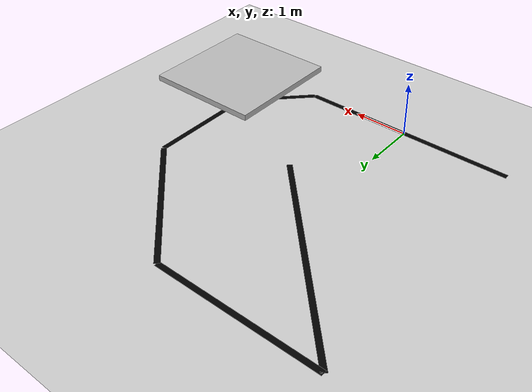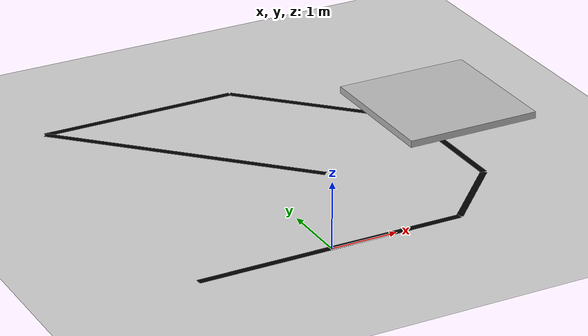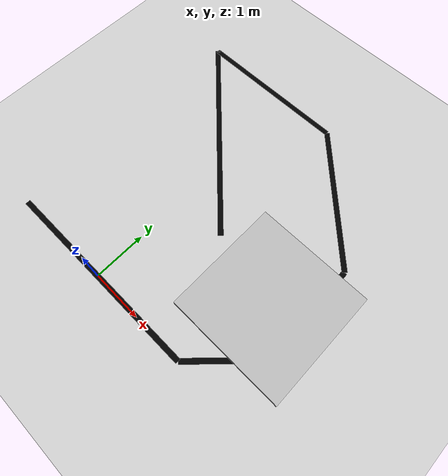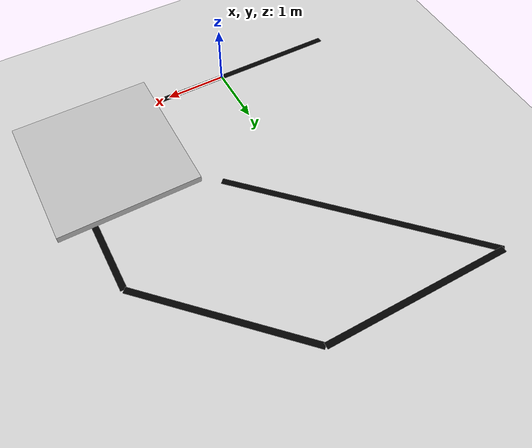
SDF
<?xml version="1.0" ?>
<sdf version="1.8">
  <world name="line_follower_world_v2">

    <!-- 1. 添加 Gazebo Sim 必需的系统插件 -->
    <plugin
      filename="gz-sim-physics-system"
      name="gz::sim::systems::Physics">
    </plugin>
    <plugin
      filename="gz-sim-sensors-system"
      name="gz::sim::systems::Sensors">
      <render_engine>ogre2</render_engine>
    </plugin>
    <plugin
      filename="gz-sim-user-commands-system"
      name="gz::sim::systems::UserCommands">
    </plugin>
    <plugin
      filename="gz-sim-scene-broadcaster-system"
      name="gz::sim::systems::SceneBroadcaster">
    </plugin>

    <!-- 太阳光照 -->
    <include>
      <uri>https://fuel.gazebosim.org/1.0/openrobotics/models/sun</uri>
    </include>

    <!-- 地面模型 -->
    <model name="ground_plane">
        <static>true</static>
        <link name="link">
            <collision name="collision">
                <geometry><plane><normal>0 0 1</normal><size>100 100</size></plane></geometry>
            </collision>
            <visual name="visual">
              <semantic><label>2</label></semantic>
              <geometry><plane><normal>0 0 1</normal><size>100 100</size></plane></geometry>
              <material>
                <!-- 为了可移植性，直接定义颜色，而不是依赖本地文件 -->
                <ambient>0.8 0.8 0.8 1</ambient>
                <diffuse>0.8 0.8 0.8 1</diffuse>
              </material>
              <cast_shadows>false</cast_shadows>
            </visual>
        </link>
    </model>

    <model name="line_track">
      <static>true</static>
      <!-- 每段线都是一个link，方便统一打标签 -->
      <!-- 原始路径: (-2,0)->(2,0)->(3,1)->(3,3)->(1,5)->(-2,5) -->

      <!-- 段 1: from (-2,0) to (2,0) -->
      <link name="segment_1">
        <pose>0 0 0.01 0 0 0</pose>
        <visual name="visual">
          <semantic><label>1</label></semantic>
          <geometry><box><size>4 0.1 0.001</size></box></geometry>
          <material><ambient>0 0 0 1</ambient><diffuse>0 0 0 1</diffuse></material>
        </visual>
      </link>

      <!-- 段 2: from (2,0) to (3,1) -->
      <link name="segment_2">
        <pose>2.5 0.5 0.01 0 0 0.785398</pose> <!-- 旋转45度 -->
        <visual name="visual">
          <semantic><label>1</label></semantic>
          <geometry><box><size>1.414 0.1 0.001</size></box></geometry>
          <material><ambient>0 0 0 1</ambient><diffuse>0 0 0 1</diffuse></material>
        </visual>
      </link>

      <!-- 段 3: from (3,1) to (3,3) -->
      <link name="segment_3">
        <pose>3 2 0.01 0 0 1.570796</pose> <!-- 旋转90度 -->
        <visual name="visual">
          <semantic><label>1</label></semantic>
          <geometry><box><size>2 0.1 0.001</size></box></geometry>
          <material><ambient>0 0 0 1</ambient><diffuse>0 0 0 1</diffuse></material>
        </visual>
      </link>

      <!-- 段 4: from (3,3) to (1,5) -->
      <link name="segment_4">
        <pose>2 4 0.01 0 0 2.356194</pose> <!-- 旋转135度 -->
        <visual name="visual">
          <semantic><label>1</label></semantic>
          <geometry><box><size>2.828 0.1 0.001</size></box></geometry>
          <material><ambient>0 0 0 1</ambient><diffuse>0 0 0 1</diffuse></material>
        </visual>
      </link>

      <!-- 段 5: from (1,5) to (-2,5) -->
      <link name="segment_5">
        <pose>-0.5 5 0.01 0 0 3.141592</pose> <!-- 旋转180度 -->
        <visual name="visual">
          <semantic><label>1</label></semantic>
          <geometry><box><size>3 0.1 0.001</size></box></geometry>
          <material><ambient>0 0 0 1</ambient><diffuse>0 0 0 1</diffuse></material>
        </visual>
      </link>

      <!-- (-2, 5) to (1, 2) -->
      <link name="segment_6">
        <pose>-0.5 3.5 0.01 0 0 -0.785398</pose>
        <visual name="visual">
          <semantic><label>1</label></semantic>
          <geometry><box><size>4.242 0.1 0.001</size></box></geometry>
          <material><ambient>0 0 0 1</ambient><diffuse>0 0 0 1</diffuse></material>
        </visual>
      </link>
    </model>

    <!-- 你的阴影投射物，保持不变 -->
    <model name="shadow_caster">
      <static>true</static>
      <pose>2.5 1.5 1.0 0 0 0</pose>
      <link name="link">
        <!-- 注意：这个物体没有label，所以在语义图像中会是背景(标签0) -->
        <visual name="visual">
          <geometry><box><size>2 2 0.1</size></box></geometry>
          <cast_shadows>true</cast_shadows>
        </visual>
      </link>
    </model>

  </world>
</sdf>
